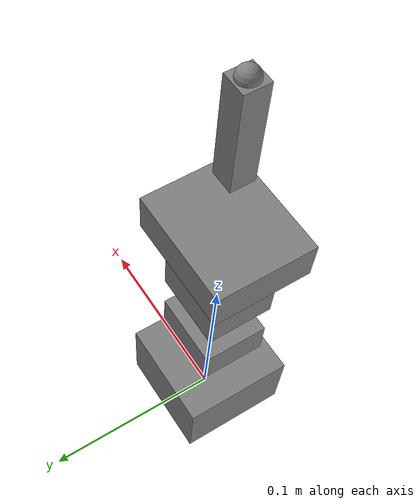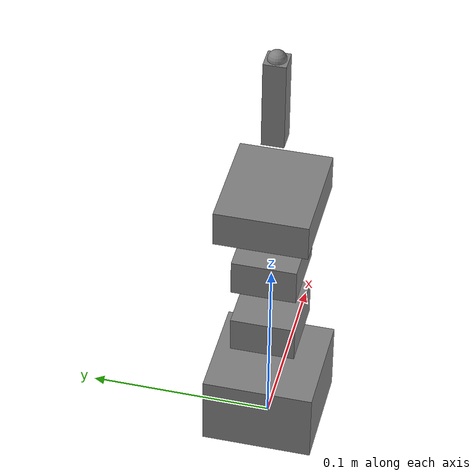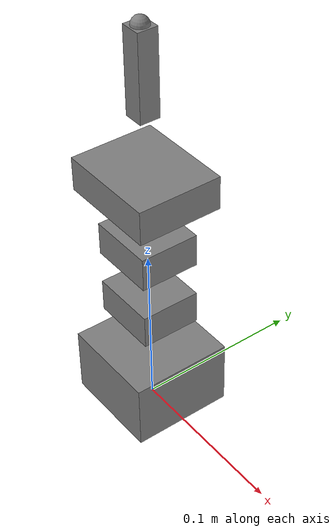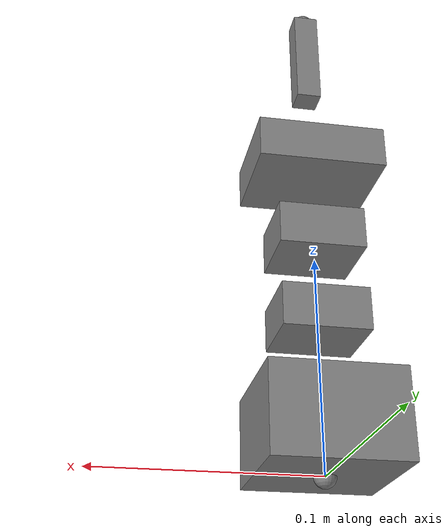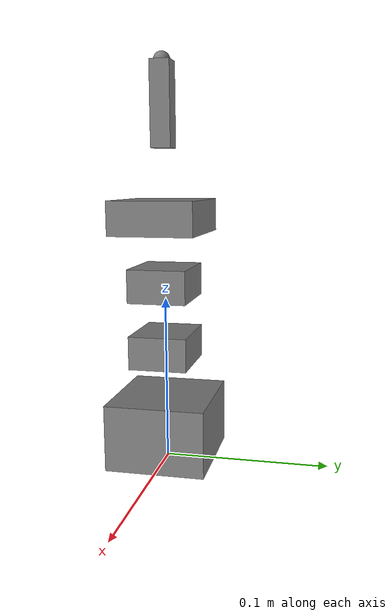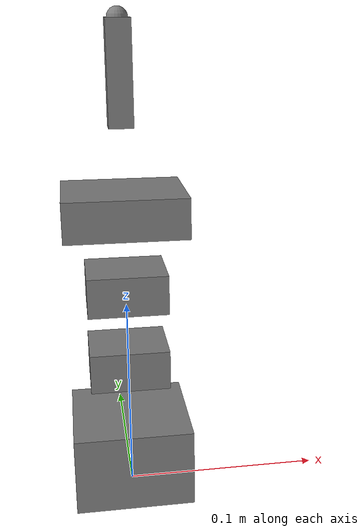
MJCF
<mujoco model="structural_body">
  <compiler angle="radian"/>

  <worldbody>
    <body name="body_0000">
      <inertial pos="0 0 0.02" quat="0.5 0.5 -0.5 0.5" mass="0.8" diaginertia="0.00048 0.000346667 0.000346667"/>
      <geom size="0.03 0.03 0.02" pos="0 0 0.02" type="box"/>
      <site name="robot_base" pos="0 0 0"/>
      <body name="body_0001" pos="0 0 0.07">
        <inertial pos="0 0 0" quat="0 0.707107 0 0.707107" mass="0.25" diaginertia="5.88542e-05 4.16667e-05 3.38542e-05"/>
        <joint name="axis_0000" pos="0 0 0" axis="1 0 0" type="slide" range="-0.05 0.05" actuatorfrcrange="-25 25" damping="0.1"/>
        <geom size="0.02 0.0175 0.01" type="box"/>
        <body name="body_0002" pos="0 0 0.04">
          <inertial pos="0 0 0" quat="0 0.707107 0 0.707107" mass="0.2" diaginertia="4.70833e-05 3.33333e-05 2.70833e-05"/>
          <joint name="axis_0001" pos="0 0 0" axis="0 1 0" type="slide" range="-0.05 0.05" actuatorfrcrange="-25 25" damping="0.1"/>
          <geom size="0.02 0.0175 0.01" type="box"/>
          <body name="body_0003" pos="0 0 0.04">
            <inertial pos="0 0 0" quat="0 0.707107 0 0.707107" mass="0.1" diaginertia="5.08333e-05 3.33333e-05 2.41667e-05"/>
            <geom size="0.03 0.025 0.01" type="box"/>
            <site name="body_0003_wrist" pos="0 0 0"/>
            <body name="body_0004" pos="0 0 0.04">
              <inertial pos="0 0 0.025" mass="0.04" diaginertia="8.81333e-06 8.81333e-06 9.6e-07"/>
              <geom size="0.006 0.006 0.025" pos="0 0 0.025" type="box"/>
              <site name="body_0003_tip" pos="0 0 0.05"/>
            </body>
          </body>
        </body>
      </body>
    </body>
  </worldbody>

  <actuator>
    <general name="axis_0000_motor" joint="axis_0000" ctrllimited="true" ctrlrange="-25 25" forcelimited="true" forcerange="-25 25"/>
    <general name="axis_0001_motor" joint="axis_0001" ctrllimited="true" ctrlrange="-25 25" forcelimited="true" forcerange="-25 25"/>
  </actuator>
</mujoco>
